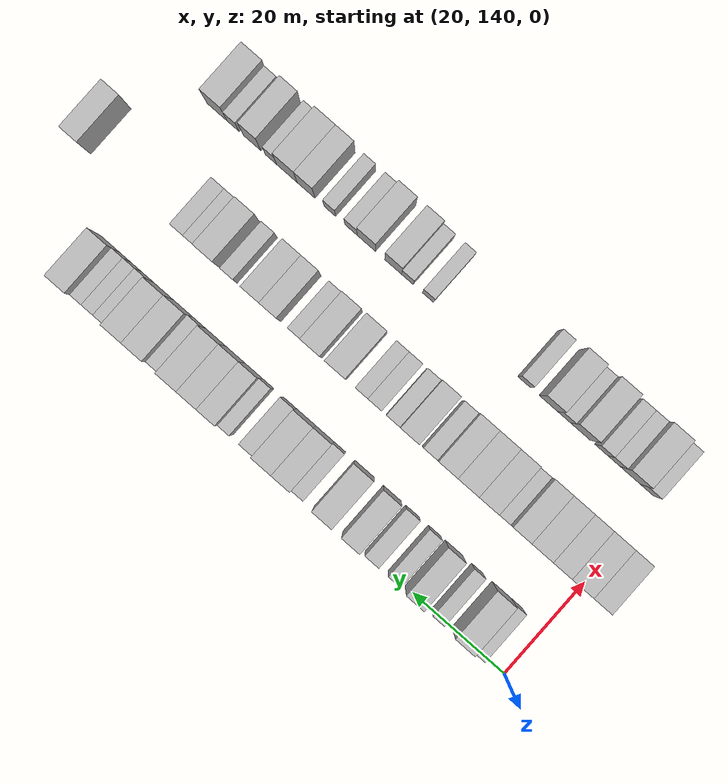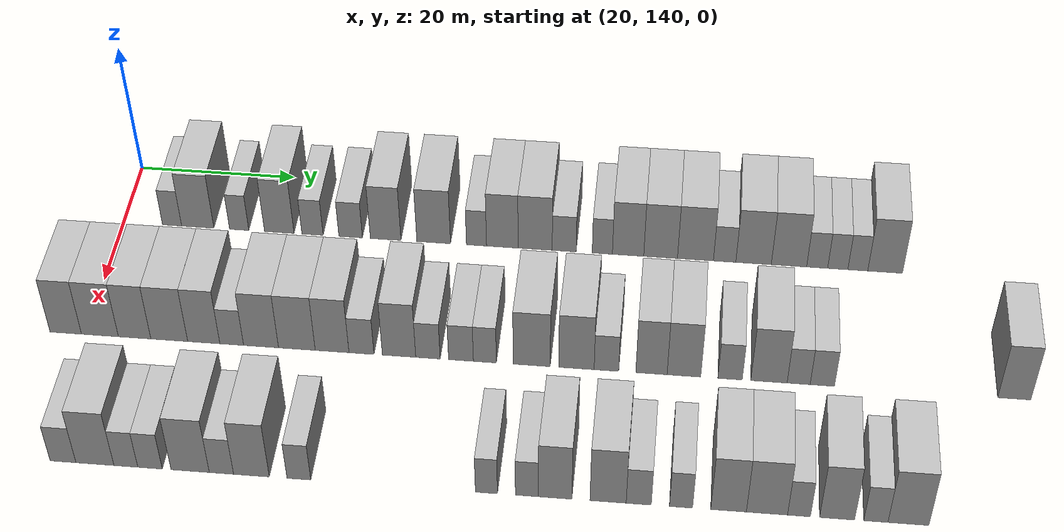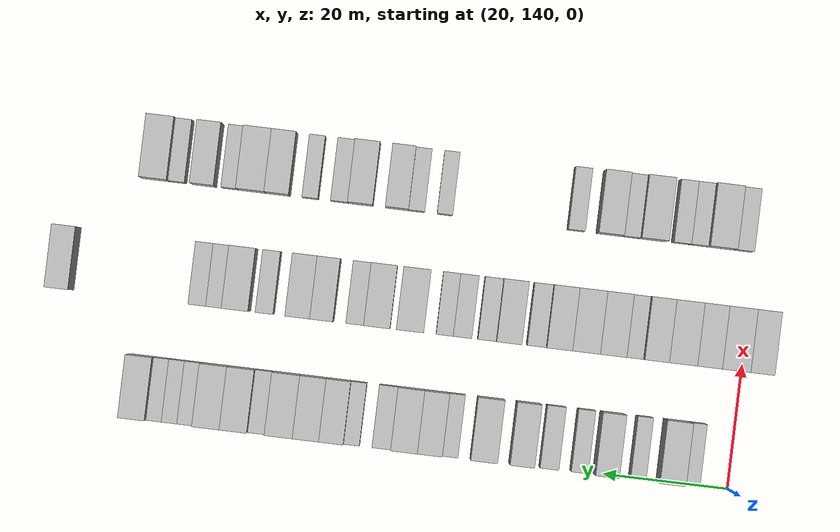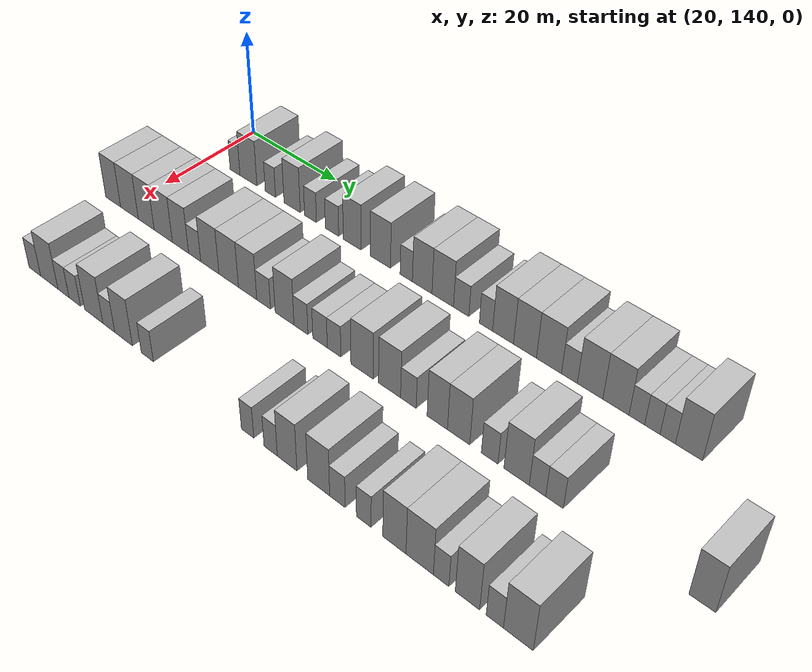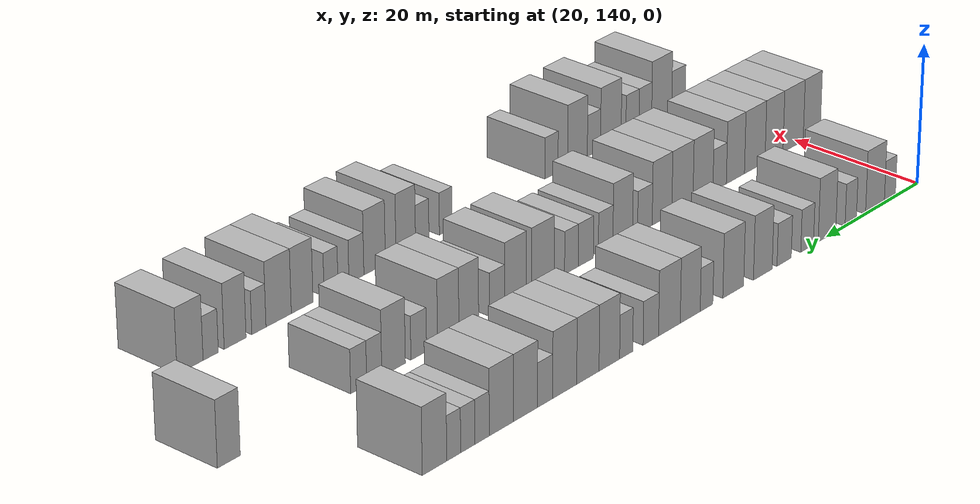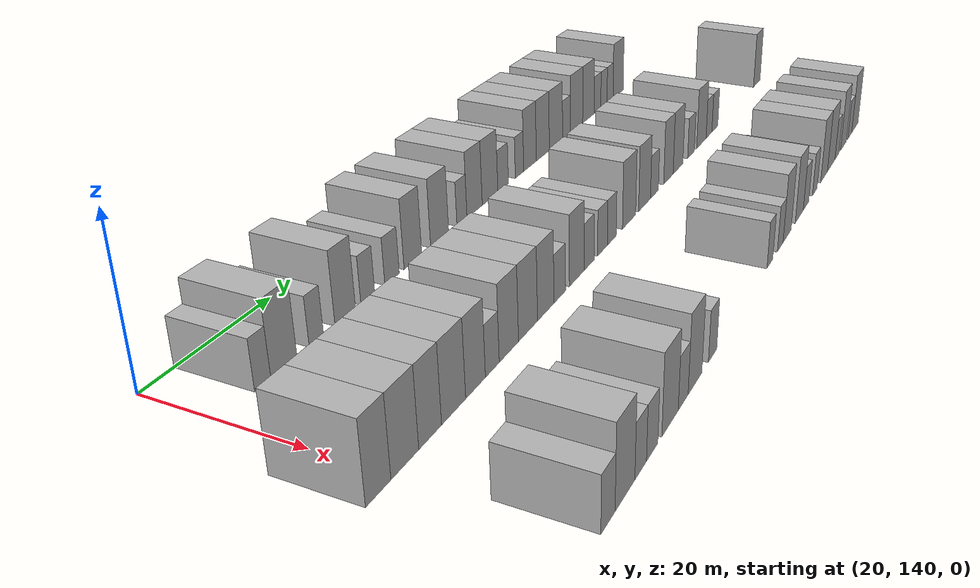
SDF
<sdf version="1.6">
 <world name="default">
  <model name="building_90">
   <static>1</static>
   <pose>25.0000 146.1806 0 0.000000 0.000000 0.000000</pose>
   <link name="link">
    <pose>0 0 3.00 0 0 0</pose>
    <collision name="collision"><geometry><box><size>10.0000 2.4386 6.0000</size></box></geometry></collision>
    <visual name="visual">
     <cast_shadows>0</cast_shadows>
     <geometry><box><size>10.0000 2.4386 6.0000</size></box></geometry>
     <material>
      <script>
       <uri>model://HANNAS_wall/materials/scripts</uri>
       <uri>model://HANNAS_wall/materials/textures</uri>
       <name>vrc/HANNAS_wall</name>
      </script>
     </material>
    </visual>
   </link>
  </model>
  <model name="building_91">
   <static>1</static>
   <pose>25.0000 149.4618 0 0.000000 0.000000 0.000000</pose>
   <link name="link">
    <pose>0 0 4.50 0 0 0</pose>
    <collision name="collision"><geometry><box><size>10.0000 4.1237 9.0000</size></box></geometry></collision>
    <visual name="visual">
     <cast_shadows>0</cast_shadows>
     <geometry><box><size>10.0000 4.1237 9.0000</size></box></geometry>
     <material>
      <script>
       <uri>model://HANNAS_wall/materials/scripts</uri>
       <uri>model://HANNAS_wall/materials/textures</uri>
       <name>vrc/HANNAS_wall</name>
      </script>
     </material>
    </visual>
   </link>
  </model>
  <model name="building_92">
   <static>1</static>
   <pose>25.0000 154.7460 0 0.000000 0.000000 0.000000</pose>
   <link name="link">
    <pose>0 0 3.00 0 0 0</pose>
    <collision name="collision"><geometry><box><size>10.0000 2.4448 6.0000</size></box></geometry></collision>
    <visual name="visual">
     <cast_shadows>0</cast_shadows>
     <geometry><box><size>10.0000 2.4448 6.0000</size></box></geometry>
     <material>
      <script>
       <uri>model://HANNAS_wall/materials/scripts</uri>
       <uri>model://HANNAS_wall/materials/textures</uri>
       <name>vrc/HANNAS_wall</name>
      </script>
     </material>
    </visual>
   </link>
  </model>
  <model name="building_93">
   <static>1</static>
   <pose>25.0000 159.8432 0 0.000000 0.000000 0.000000</pose>
   <link name="link">
    <pose>0 0 4.50 0 0 0</pose>
    <collision name="collision"><geometry><box><size>10.0000 3.7496 9.0000</size></box></geometry></collision>
    <visual name="visual">
     <cast_shadows>0</cast_shadows>
     <geometry><box><size>10.0000 3.7496 9.0000</size></box></geometry>
     <material>
      <script>
       <uri>model://HANNAS_wall/materials/scripts</uri>
       <uri>model://HANNAS_wall/materials/textures</uri>
       <name>vrc/HANNAS_wall</name>
      </script>
     </material>
    </visual>
   </link>
  </model>
  <model name="building_94">
   <static>1</static>
   <pose>25.0000 164.0615 0 0.000000 0.000000 0.000000</pose>
   <link name="link">
    <pose>0 0 3.00 0 0 0</pose>
    <collision name="collision"><geometry><box><size>10.0000 2.6869 6.0000</size></box></geometry></collision>
    <visual name="visual">
     <cast_shadows>0</cast_shadows>
     <geometry><box><size>10.0000 2.6869 6.0000</size></box></geometry>
     <material>
      <script>
       <uri>model://HANNAS_wall/materials/scripts</uri>
       <uri>model://HANNAS_wall/materials/textures</uri>
       <name>vrc/HANNAS_wall</name>
      </script>
     </material>
    </visual>
   </link>
  </model>
  <model name="building_95">
   <static>1</static>
   <pose>25.0000 168.8901 0 0.000000 0.000000 0.000000</pose>
   <link name="link">
    <pose>0 0 3.00 0 0 0</pose>
    <collision name="collision"><geometry><box><size>10.0000 2.9703 6.0000</size></box></geometry></collision>
    <visual name="visual">
     <cast_shadows>0</cast_shadows>
     <geometry><box><size>10.0000 2.9703 6.0000</size></box></geometry>
     <material>
      <script>
       <uri>model://HANNAS_wall/materials/scripts</uri>
       <uri>model://HANNAS_wall/materials/textures</uri>
       <name>vrc/HANNAS_wall</name>
      </script>
     </material>
    </visual>
   </link>
  </model>
  <model name="building_96">
   <static>1</static>
   <pose>25.0000 173.3067 0 0.000000 0.000000 0.000000</pose>
   <link name="link">
    <pose>0 0 4.50 0 0 0</pose>
    <collision name="collision"><geometry><box><size>10.0000 3.8629 9.0000</size></box></geometry></collision>
    <visual name="visual">
     <cast_shadows>0</cast_shadows>
     <geometry><box><size>10.0000 3.8629 9.0000</size></box></geometry>
     <material>
      <script>
       <uri>model://HANNAS_wall/materials/scripts</uri>
       <uri>model://HANNAS_wall/materials/textures</uri>
       <name>vrc/HANNAS_wall</name>
      </script>
     </material>
    </visual>
   </link>
  </model>
  <model name="building_97">
   <static>1</static>
   <pose>25.0000 179.3547 0 0.000000 0.000000 0.000000</pose>
   <link name="link">
    <pose>0 0 4.50 0 0 0</pose>
    <collision name="collision"><geometry><box><size>10.0000 4.2333 9.0000</size></box></geometry></collision>
    <visual name="visual">
     <cast_shadows>0</cast_shadows>
     <geometry><box><size>10.0000 4.2333 9.0000</size></box></geometry>
     <material>
      <script>
       <uri>model://HANNAS_wall/materials/scripts</uri>
       <uri>model://HANNAS_wall/materials/textures</uri>
       <name>vrc/HANNAS_wall</name>
      </script>
     </material>
    </visual>
   </link>
  </model>
  <model name="building_98">
   <static>1</static>
   <pose>25.0000 184.7286 0 0.000000 0.000000 0.000000</pose>
   <link name="link">
    <pose>0 0 3.00 0 0 0</pose>
    <collision name="collision"><geometry><box><size>10.0000 2.5144 6.0000</size></box></geometry></collision>
    <visual name="visual">
     <cast_shadows>0</cast_shadows>
     <geometry><box><size>10.0000 2.5144 6.0000</size></box></geometry>
     <material>
      <script>
       <uri>model://HANNAS_wall/materials/scripts</uri>
       <uri>model://HANNAS_wall/materials/textures</uri>
       <name>vrc/HANNAS_wall</name>
      </script>
     </material>
    </visual>
   </link>
  </model>
  <model name="building_99">
   <static>1</static>
   <pose>25.0000 187.9658 0 0.000000 0.000000 0.000000</pose>
   <link name="link">
    <pose>0 0 4.50 0 0 0</pose>
    <collision name="collision"><geometry><box><size>10.0000 3.9601 9.0000</size></box></geometry></collision>
    <visual name="visual">
     <cast_shadows>0</cast_shadows>
     <geometry><box><size>10.0000 3.9601 9.0000</size></box></geometry>
     <material>
      <script>
       <uri>model://HANNAS_wall/materials/scripts</uri>
       <uri>model://HANNAS_wall/materials/textures</uri>
       <name>vrc/HANNAS_wall</name>
      </script>
     </material>
    </visual>
   </link>
  </model>
  <model name="building_100">
   <static>1</static>
   <pose>25.0000 192.0686 0 0.000000 0.000000 0.000000</pose>
   <link name="link">
    <pose>0 0 4.50 0 0 0</pose>
    <collision name="collision"><geometry><box><size>10.0000 4.2455 9.0000</size></box></geometry></collision>
    <visual name="visual">
     <cast_shadows>0</cast_shadows>
     <geometry><box><size>10.0000 4.2455 9.0000</size></box></geometry>
     <material>
      <script>
       <uri>model://HANNAS_wall/materials/scripts</uri>
       <uri>model://HANNAS_wall/materials/textures</uri>
       <name>vrc/HANNAS_wall</name>
      </script>
     </material>
    </visual>
   </link>
  </model>
  <model name="building_101">
   <static>1</static>
   <pose>25.0000 195.6836 0 0.000000 0.000000 0.000000</pose>
   <link name="link">
    <pose>0 0 3.00 0 0 0</pose>
    <collision name="collision"><geometry><box><size>10.0000 2.9845 6.0000</size></box></geometry></collision>
    <visual name="visual">
     <cast_shadows>0</cast_shadows>
     <geometry><box><size>10.0000 2.9845 6.0000</size></box></geometry>
     <material>
      <script>
       <uri>model://HANNAS_wall/materials/scripts</uri>
       <uri>model://HANNAS_wall/materials/textures</uri>
       <name>vrc/HANNAS_wall</name>
      </script>
     </material>
    </visual>
   </link>
  </model>
  <model name="building_102">
   <static>1</static>
   <pose>25.0000 200.4294 0 0.000000 0.000000 0.000000</pose>
   <link name="link">
    <pose>0 0 3.00 0 0 0</pose>
    <collision name="collision"><geometry><box><size>10.0000 2.5070 6.0000</size></box></geometry></collision>
    <visual name="visual">
     <cast_shadows>0</cast_shadows>
     <geometry><box><size>10.0000 2.5070 6.0000</size></box></geometry>
     <material>
      <script>
       <uri>model://HANNAS_wall/materials/scripts</uri>
       <uri>model://HANNAS_wall/materials/textures</uri>
       <name>vrc/HANNAS_wall</name>
      </script>
     </material>
    </visual>
   </link>
  </model>
  <model name="building_103">
   <static>1</static>
   <pose>25.0000 203.6291 0 0.000000 0.000000 0.000000</pose>
   <link name="link">
    <pose>0 0 4.50 0 0 0</pose>
    <collision name="collision"><geometry><box><size>10.0000 3.8925 9.0000</size></box></geometry></collision>
    <visual name="visual">
     <cast_shadows>0</cast_shadows>
     <geometry><box><size>10.0000 3.8925 9.0000</size></box></geometry>
     <material>
      <script>
       <uri>model://HANNAS_wall/materials/scripts</uri>
       <uri>model://HANNAS_wall/materials/textures</uri>
       <name>vrc/HANNAS_wall</name>
      </script>
     </material>
    </visual>
   </link>
  </model>
  <model name="building_104">
   <static>1</static>
   <pose>25.0000 207.6634 0 0.000000 0.000000 0.000000</pose>
   <link name="link">
    <pose>0 0 4.50 0 0 0</pose>
    <collision name="collision"><geometry><box><size>10.0000 4.1762 9.0000</size></box></geometry></collision>
    <visual name="visual">
     <cast_shadows>0</cast_shadows>
     <geometry><box><size>10.0000 4.1762 9.0000</size></box></geometry>
     <material>
      <script>
       <uri>model://HANNAS_wall/materials/scripts</uri>
       <uri>model://HANNAS_wall/materials/textures</uri>
       <name>vrc/HANNAS_wall</name>
      </script>
     </material>
    </visual>
   </link>
  </model>
  <model name="building_105">
   <static>1</static>
   <pose>25.0000 211.9702 0 0.000000 0.000000 0.000000</pose>
   <link name="link">
    <pose>0 0 4.50 0 0 0</pose>
    <collision name="collision"><geometry><box><size>10.0000 4.4373 9.0000</size></box></geometry></collision>
    <visual name="visual">
     <cast_shadows>0</cast_shadows>
     <geometry><box><size>10.0000 4.4373 9.0000</size></box></geometry>
     <material>
      <script>
       <uri>model://HANNAS_wall/materials/scripts</uri>
       <uri>model://HANNAS_wall/materials/textures</uri>
       <name>vrc/HANNAS_wall</name>
      </script>
     </material>
    </visual>
   </link>
  </model>
  <model name="building_106">
   <static>1</static>
   <pose>25.0000 215.5720 0 0.000000 0.000000 0.000000</pose>
   <link name="link">
    <pose>0 0 3.00 0 0 0</pose>
    <collision name="collision"><geometry><box><size>10.0000 2.7662 6.0000</size></box></geometry></collision>
    <visual name="visual">
     <cast_shadows>0</cast_shadows>
     <geometry><box><size>10.0000 2.7662 6.0000</size></box></geometry>
     <material>
      <script>
       <uri>model://HANNAS_wall/materials/scripts</uri>
       <uri>model://HANNAS_wall/materials/textures</uri>
       <name>vrc/HANNAS_wall</name>
      </script>
     </material>
    </visual>
   </link>
  </model>
  <model name="building_107">
   <static>1</static>
   <pose>25.0000 219.1372 0 0.000000 0.000000 0.000000</pose>
   <link name="link">
    <pose>0 0 4.50 0 0 0</pose>
    <collision name="collision"><geometry><box><size>10.0000 4.3643 9.0000</size></box></geometry></collision>
    <visual name="visual">
     <cast_shadows>0</cast_shadows>
     <geometry><box><size>10.0000 4.3643 9.0000</size></box></geometry>
     <material>
      <script>
       <uri>model://HANNAS_wall/materials/scripts</uri>
       <uri>model://HANNAS_wall/materials/textures</uri>
       <name>vrc/HANNAS_wall</name>
      </script>
     </material>
    </visual>
   </link>
  </model>
  <model name="building_108">
   <static>1</static>
   <pose>25.0000 223.4905 0 0.000000 0.000000 0.000000</pose>
   <link name="link">
    <pose>0 0 4.50 0 0 0</pose>
    <collision name="collision"><geometry><box><size>10.0000 4.3422 9.0000</size></box></geometry></collision>
    <visual name="visual">
     <cast_shadows>0</cast_shadows>
     <geometry><box><size>10.0000 4.3422 9.0000</size></box></geometry>
     <material>
      <script>
       <uri>model://HANNAS_wall/materials/scripts</uri>
       <uri>model://HANNAS_wall/materials/textures</uri>
       <name>vrc/HANNAS_wall</name>
      </script>
     </material>
    </visual>
   </link>
  </model>
  <model name="building_109">
   <static>1</static>
   <pose>25.0000 226.9497 0 0.000000 0.000000 0.000000</pose>
   <link name="link">
    <pose>0 0 3.00 0 0 0</pose>
    <collision name="collision"><geometry><box><size>10.0000 2.5762 6.0000</size></box></geometry></collision>
    <visual name="visual">
     <cast_shadows>0</cast_shadows>
     <geometry><box><size>10.0000 2.5762 6.0000</size></box></geometry>
     <material>
      <script>
       <uri>model://HANNAS_wall/materials/scripts</uri>
       <uri>model://HANNAS_wall/materials/textures</uri>
       <name>vrc/HANNAS_wall</name>
      </script>
     </material>
    </visual>
   </link>
  </model>
  <model name="building_110">
   <static>1</static>
   <pose>25.0000 229.4760 0 0.000000 0.000000 0.000000</pose>
   <link name="link">
    <pose>0 0 3.00 0 0 0</pose>
    <collision name="collision"><geometry><box><size>10.0000 2.4764 6.0000</size></box></geometry></collision>
    <visual name="visual">
     <cast_shadows>0</cast_shadows>
     <geometry><box><size>10.0000 2.4764 6.0000</size></box></geometry>
     <material>
      <script>
       <uri>model://HANNAS_wall/materials/scripts</uri>
       <uri>model://HANNAS_wall/materials/textures</uri>
       <name>vrc/HANNAS_wall</name>
      </script>
     </material>
    </visual>
   </link>
  </model>
  <model name="building_111">
   <static>1</static>
   <pose>25.0000 231.9313 0 0.000000 0.000000 0.000000</pose>
   <link name="link">
    <pose>0 0 3.00 0 0 0</pose>
    <collision name="collision"><geometry><box><size>10.0000 2.4343 6.0000</size></box></geometry></collision>
    <visual name="visual">
     <cast_shadows>0</cast_shadows>
     <geometry><box><size>10.0000 2.4343 6.0000</size></box></geometry>
     <material>
      <script>
       <uri>model://HANNAS_wall/materials/scripts</uri>
       <uri>model://HANNAS_wall/materials/textures</uri>
       <name>vrc/HANNAS_wall</name>
      </script>
     </material>
    </visual>
   </link>
  </model>
  <model name="building_112">
   <static>1</static>
   <pose>25.0000 235.2705 0 0.000000 0.000000 0.000000</pose>
   <link name="link">
    <pose>0 0 4.50 0 0 0</pose>
    <collision name="collision"><geometry><box><size>10.0000 4.2439 9.0000</size></box></geometry></collision>
    <visual name="visual">
     <cast_shadows>0</cast_shadows>
     <geometry><box><size>10.0000 4.2439 9.0000</size></box></geometry>
     <material>
      <script>
       <uri>model://HANNAS_wall/materials/scripts</uri>
       <uri>model://HANNAS_wall/materials/textures</uri>
       <name>vrc/HANNAS_wall</name>
      </script>
     </material>
    </visual>
   </link>
  </model>
  <model name="building_202">
   <static>1</static>
   <pose>44.0000 137.5778 0 0.000000 0.000000 0.000000</pose>
   <link name="link">
    <pose>0 0 4.50 0 0 0</pose>
    <collision name="collision"><geometry><box><size>10.0000 3.8270 9.0000</size></box></geometry></collision>
    <visual name="visual">
     <cast_shadows>0</cast_shadows>
     <geometry><box><size>10.0000 3.8270 9.0000</size></box></geometry>
     <material>
      <script>
       <uri>model://HANNAS_wall/materials/scripts</uri>
       <uri>model://HANNAS_wall/materials/textures</uri>
       <name>vrc/HANNAS_wall</name>
      </script>
     </material>
    </visual>
   </link>
  </model>
  <model name="building_203">
   <static>1</static>
   <pose>44.0000 141.7317 0 0.000000 0.000000 0.000000</pose>
   <link name="link">
    <pose>0 0 4.50 0 0 0</pose>
    <collision name="collision"><geometry><box><size>10.0000 4.4809 9.0000</size></box></geometry></collision>
    <visual name="visual">
     <cast_shadows>0</cast_shadows>
     <geometry><box><size>10.0000 4.4809 9.0000</size></box></geometry>
     <material>
      <script>
       <uri>model://HANNAS_wall/materials/scripts</uri>
       <uri>model://HANNAS_wall/materials/textures</uri>
       <name>vrc/HANNAS_wall</name>
      </script>
     </material>
    </visual>
   </link>
  </model>
  <model name="building_204">
   <static>1</static>
   <pose>44.0000 145.9377 0 0.000000 0.000000 0.000000</pose>
   <link name="link">
    <pose>0 0 4.50 0 0 0</pose>
    <collision name="collision"><geometry><box><size>10.0000 3.9311 9.0000</size></box></geometry></collision>
    <visual name="visual">
     <cast_shadows>0</cast_shadows>
     <geometry><box><size>10.0000 3.9311 9.0000</size></box></geometry>
     <material>
      <script>
       <uri>model://HANNAS_wall/materials/scripts</uri>
       <uri>model://HANNAS_wall/materials/textures</uri>
       <name>vrc/HANNAS_wall</name>
      </script>
     </material>
    </visual>
   </link>
  </model>
  <model name="building_205">
   <static>1</static>
   <pose>44.0000 150.1279 0 0.000000 0.000000 0.000000</pose>
   <link name="link">
    <pose>0 0 4.50 0 0 0</pose>
    <collision name="collision"><geometry><box><size>10.0000 4.4493 9.0000</size></box></geometry></collision>
    <visual name="visual">
     <cast_shadows>0</cast_shadows>
     <geometry><box><size>10.0000 4.4493 9.0000</size></box></geometry>
     <material>
      <script>
       <uri>model://HANNAS_wall/materials/scripts</uri>
       <uri>model://HANNAS_wall/materials/textures</uri>
       <name>vrc/HANNAS_wall</name>
      </script>
     </material>
    </visual>
   </link>
  </model>
  <model name="building_206">
   <static>1</static>
   <pose>44.0000 154.2932 0 0.000000 0.000000 0.000000</pose>
   <link name="link">
    <pose>0 0 4.50 0 0 0</pose>
    <collision name="collision"><geometry><box><size>10.0000 3.8811 9.0000</size></box></geometry></collision>
    <visual name="visual">
     <cast_shadows>0</cast_shadows>
     <geometry><box><size>10.0000 3.8811 9.0000</size></box></geometry>
     <material>
      <script>
       <uri>model://HANNAS_wall/materials/scripts</uri>
       <uri>model://HANNAS_wall/materials/textures</uri>
       <name>vrc/HANNAS_wall</name>
      </script>
     </material>
    </visual>
   </link>
  </model>
  <model name="building_207">
   <static>1</static>
   <pose>44.0000 157.6631 0 0.000000 0.000000 0.000000</pose>
   <link name="link">
    <pose>0 0 3.00 0 0 0</pose>
    <collision name="collision"><geometry><box><size>10.0000 2.8587 6.0000</size></box></geometry></collision>
    <visual name="visual">
     <cast_shadows>0</cast_shadows>
     <geometry><box><size>10.0000 2.8587 6.0000</size></box></geometry>
     <material>
      <script>
       <uri>model://HANNAS_wall/materials/scripts</uri>
       <uri>model://HANNAS_wall/materials/textures</uri>
       <name>vrc/HANNAS_wall</name>
      </script>
     </material>
    </visual>
   </link>
  </model>
  <model name="building_208">
   <static>1</static>
   <pose>44.0000 161.1886 0 0.000000 0.000000 0.000000</pose>
   <link name="link">
    <pose>0 0 4.50 0 0 0</pose>
    <collision name="collision"><geometry><box><size>10.0000 4.1923 9.0000</size></box></geometry></collision>
    <visual name="visual">
     <cast_shadows>0</cast_shadows>
     <geometry><box><size>10.0000 4.1923 9.0000</size></box></geometry>
     <material>
      <script>
       <uri>model://HANNAS_wall/materials/scripts</uri>
       <uri>model://HANNAS_wall/materials/textures</uri>
       <name>vrc/HANNAS_wall</name>
      </script>
     </material>
    </visual>
   </link>
  </model>
  <model name="building_209">
   <static>1</static>
   <pose>44.0000 165.4844 0 0.000000 0.000000 0.000000</pose>
   <link name="link">
    <pose>0 0 4.50 0 0 0</pose>
    <collision name="collision"><geometry><box><size>10.0000 4.3994 9.0000</size></box></geometry></collision>
    <visual name="visual">
     <cast_shadows>0</cast_shadows>
     <geometry><box><size>10.0000 4.3994 9.0000</size></box></geometry>
     <material>
      <script>
       <uri>model://HANNAS_wall/materials/scripts</uri>
       <uri>model://HANNAS_wall/materials/textures</uri>
       <name>vrc/HANNAS_wall</name>
      </script>
     </material>
    </visual>
   </link>
  </model>
  <model name="building_210">
   <static>1</static>
   <pose>44.0000 169.7006 0 0.000000 0.000000 0.000000</pose>
   <link name="link">
    <pose>0 0 4.50 0 0 0</pose>
    <collision name="collision"><geometry><box><size>10.0000 4.0331 9.0000</size></box></geometry></collision>
    <visual name="visual">
     <cast_shadows>0</cast_shadows>
     <geometry><box><size>10.0000 4.0331 9.0000</size></box></geometry>
     <material>
      <script>
       <uri>model://HANNAS_wall/materials/scripts</uri>
       <uri>model://HANNAS_wall/materials/textures</uri>
       <name>vrc/HANNAS_wall</name>
      </script>
     </material>
    </visual>
   </link>
  </model>
  <model name="building_211">
   <static>1</static>
   <pose>44.0000 173.2096 0 0.000000 0.000000 0.000000</pose>
   <link name="link">
    <pose>0 0 3.00 0 0 0</pose>
    <collision name="collision"><geometry><box><size>10.0000 2.9848 6.0000</size></box></geometry></collision>
    <visual name="visual">
     <cast_shadows>0</cast_shadows>
     <geometry><box><size>10.0000 2.9848 6.0000</size></box></geometry>
     <material>
      <script>
       <uri>model://HANNAS_wall/materials/scripts</uri>
       <uri>model://HANNAS_wall/materials/textures</uri>
       <name>vrc/HANNAS_wall</name>
      </script>
     </material>
    </visual>
   </link>
  </model>
  <model name="building_212">
   <static>1</static>
   <pose>44.0000 177.6865 0 0.000000 0.000000 0.000000</pose>
   <link name="link">
    <pose>0 0 4.50 0 0 0</pose>
    <collision name="collision"><geometry><box><size>10.0000 3.9689 9.0000</size></box></geometry></collision>
    <visual name="visual">
     <cast_shadows>0</cast_shadows>
     <geometry><box><size>10.0000 3.9689 9.0000</size></box></geometry>
     <material>
      <script>
       <uri>model://HANNAS_wall/materials/scripts</uri>
       <uri>model://HANNAS_wall/materials/textures</uri>
       <name>vrc/HANNAS_wall</name>
      </script>
     </material>
    </visual>
   </link>
  </model>
  <model name="building_213">
   <static>1</static>
   <pose>44.0000 181.1216 0 0.000000 0.000000 0.000000</pose>
   <link name="link">
    <pose>0 0 3.00 0 0 0</pose>
    <collision name="collision"><geometry><box><size>10.0000 2.9013 6.0000</size></box></geometry></collision>
    <visual name="visual">
     <cast_shadows>0</cast_shadows>
     <geometry><box><size>10.0000 2.9013 6.0000</size></box></geometry>
     <material>
      <script>
       <uri>model://HANNAS_wall/materials/scripts</uri>
       <uri>model://HANNAS_wall/materials/textures</uri>
       <name>vrc/HANNAS_wall</name>
      </script>
     </material>
    </visual>
   </link>
  </model>
  <model name="building_214">
   <static>1</static>
   <pose>44.0000 185.0417 0 0.000000 0.000000 0.000000</pose>
   <link name="link">
    <pose>0 0 3.00 0 0 0</pose>
    <collision name="collision"><geometry><box><size>10.0000 2.9390 6.0000</size></box></geometry></collision>
    <visual name="visual">
     <cast_shadows>0</cast_shadows>
     <geometry><box><size>10.0000 2.9390 6.0000</size></box></geometry>
     <material>
      <script>
       <uri>model://HANNAS_wall/materials/scripts</uri>
       <uri>model://HANNAS_wall/materials/textures</uri>
       <name>vrc/HANNAS_wall</name>
      </script>
     </material>
    </visual>
   </link>
  </model>
  <model name="building_215">
   <static>1</static>
   <pose>44.0000 187.8709 0 0.000000 0.000000 0.000000</pose>
   <link name="link">
    <pose>0 0 3.00 0 0 0</pose>
    <collision name="collision"><geometry><box><size>10.0000 2.7193 6.0000</size></box></geometry></collision>
    <visual name="visual">
     <cast_shadows>0</cast_shadows>
     <geometry><box><size>10.0000 2.7193 6.0000</size></box></geometry>
     <material>
      <script>
       <uri>model://HANNAS_wall/materials/scripts</uri>
       <uri>model://HANNAS_wall/materials/textures</uri>
       <name>vrc/HANNAS_wall</name>
      </script>
     </material>
    </visual>
   </link>
  </model>
  <model name="building_216">
   <static>1</static>
   <pose>44.0000 193.4069 0 0.000000 0.000000 0.000000</pose>
   <link name="link">
    <pose>0 0 4.50 0 0 0</pose>
    <collision name="collision"><geometry><box><size>10.0000 4.3528 9.0000</size></box></geometry></collision>
    <visual name="visual">
     <cast_shadows>0</cast_shadows>
     <geometry><box><size>10.0000 4.3528 9.0000</size></box></geometry>
     <material>
      <script>
       <uri>model://HANNAS_wall/materials/scripts</uri>
       <uri>model://HANNAS_wall/materials/textures</uri>
       <name>vrc/HANNAS_wall</name>
      </script>
     </material>
    </visual>
   </link>
  </model>
  <model name="building_217">
   <static>1</static>
   <pose>44.0000 198.6674 0 0.000000 0.000000 0.000000</pose>
   <link name="link">
    <pose>0 0 4.50 0 0 0</pose>
    <collision name="collision"><geometry><box><size>10.0000 4.1682 9.0000</size></box></geometry></collision>
    <visual name="visual">
     <cast_shadows>0</cast_shadows>
     <geometry><box><size>10.0000 4.1682 9.0000</size></box></geometry>
     <material>
      <script>
       <uri>model://HANNAS_wall/materials/scripts</uri>
       <uri>model://HANNAS_wall/materials/textures</uri>
       <name>vrc/HANNAS_wall</name>
      </script>
     </material>
    </visual>
   </link>
  </model>
  <model name="building_218">
   <static>1</static>
   <pose>44.0000 202.1941 0 0.000000 0.000000 0.000000</pose>
   <link name="link">
    <pose>0 0 3.00 0 0 0</pose>
    <collision name="collision"><geometry><box><size>10.0000 2.8851 6.0000</size></box></geometry></collision>
    <visual name="visual">
     <cast_shadows>0</cast_shadows>
     <geometry><box><size>10.0000 2.8851 6.0000</size></box></geometry>
     <material>
      <script>
       <uri>model://HANNAS_wall/materials/scripts</uri>
       <uri>model://HANNAS_wall/materials/textures</uri>
       <name>vrc/HANNAS_wall</name>
      </script>
     </material>
    </visual>
   </link>
  </model>
  <model name="building_219">
   <static>1</static>
   <pose>44.0000 207.4664 0 0.000000 0.000000 0.000000</pose>
   <link name="link">
    <pose>0 0 4.50 0 0 0</pose>
    <collision name="collision"><geometry><box><size>10.0000 3.6595 9.0000</size></box></geometry></collision>
    <visual name="visual">
     <cast_shadows>0</cast_shadows>
     <geometry><box><size>10.0000 3.6595 9.0000</size></box></geometry>
     <material>
      <script>
       <uri>model://HANNAS_wall/materials/scripts</uri>
       <uri>model://HANNAS_wall/materials/textures</uri>
       <name>vrc/HANNAS_wall</name>
      </script>
     </material>
    </visual>
   </link>
  </model>
  <model name="building_220">
   <static>1</static>
   <pose>44.0000 211.2623 0 0.000000 0.000000 0.000000</pose>
   <link name="link">
    <pose>0 0 4.50 0 0 0</pose>
    <collision name="collision"><geometry><box><size>10.0000 3.9323 9.0000</size></box></geometry></collision>
    <visual name="visual">
     <cast_shadows>0</cast_shadows>
     <geometry><box><size>10.0000 3.9323 9.0000</size></box></geometry>
     <material>
      <script>
       <uri>model://HANNAS_wall/materials/scripts</uri>
       <uri>model://HANNAS_wall/materials/textures</uri>
       <name>vrc/HANNAS_wall</name>
      </script>
     </material>
    </visual>
   </link>
  </model>
  <model name="building_221">
   <static>1</static>
   <pose>44.0000 216.6477 0 0.000000 0.000000 0.000000</pose>
   <link name="link">
    <pose>0 0 3.00 0 0 0</pose>
    <collision name="collision"><geometry><box><size>10.0000 2.8385 6.0000</size></box></geometry></collision>
    <visual name="visual">
     <cast_shadows>0</cast_shadows>
     <geometry><box><size>10.0000 2.8385 6.0000</size></box></geometry>
     <material>
      <script>
       <uri>model://HANNAS_wall/materials/scripts</uri>
       <uri>model://HANNAS_wall/materials/textures</uri>
       <name>vrc/HANNAS_wall</name>
      </script>
     </material>
    </visual>
   </link>
  </model>
  <model name="building_222">
   <static>1</static>
   <pose>44.0000 221.1720 0 0.000000 0.000000 0.000000</pose>
   <link name="link">
    <pose>0 0 4.50 0 0 0</pose>
    <collision name="collision"><geometry><box><size>10.0000 4.2102 9.0000</size></box></geometry></collision>
    <visual name="visual">
     <cast_shadows>0</cast_shadows>
     <geometry><box><size>10.0000 4.2102 9.0000</size></box></geometry>
     <material>
      <script>
       <uri>model://HANNAS_wall/materials/scripts</uri>
       <uri>model://HANNAS_wall/materials/textures</uri>
       <name>vrc/HANNAS_wall</name>
      </script>
     </material>
    </visual>
   </link>
  </model>
  <model name="building_223">
   <static>1</static>
   <pose>44.0000 224.6124 0 0.000000 0.000000 0.000000</pose>
   <link name="link">
    <pose>0 0 3.00 0 0 0</pose>
    <collision name="collision"><geometry><box><size>10.0000 2.6706 6.0000</size></box></geometry></collision>
    <visual name="visual">
     <cast_shadows>0</cast_shadows>
     <geometry><box><size>10.0000 2.6706 6.0000</size></box></geometry>
     <material>
      <script>
       <uri>model://HANNAS_wall/materials/scripts</uri>
       <uri>model://HANNAS_wall/materials/textures</uri>
       <name>vrc/HANNAS_wall</name>
      </script>
     </material>
    </visual>
   </link>
  </model>
  <model name="building_224">
   <static>1</static>
   <pose>44.0000 227.3566 0 0.000000 0.000000 0.000000</pose>
   <link name="link">
    <pose>0 0 3.00 0 0 0</pose>
    <collision name="collision"><geometry><box><size>10.0000 2.8177 6.0000</size></box></geometry></collision>
    <visual name="visual">
     <cast_shadows>0</cast_shadows>
     <geometry><box><size>10.0000 2.8177 6.0000</size></box></geometry>
     <material>
      <script>
       <uri>model://HANNAS_wall/materials/scripts</uri>
       <uri>model://HANNAS_wall/materials/textures</uri>
       <name>vrc/HANNAS_wall</name>
      </script>
     </material>
    </visual>
   </link>
  </model>
  <model name="building_225">
   <static>1</static>
   <pose>44.0000 249.4376 0 0.000000 0.000000 0.000000</pose>
   <link name="link">
    <pose>0 0 4.50 0 0 0</pose>
    <collision name="collision"><geometry><box><size>10.0000 3.7814 9.0000</size></box></geometry></collision>
    <visual name="visual">
     <cast_shadows>0</cast_shadows>
     <geometry><box><size>10.0000 3.7814 9.0000</size></box></geometry>
     <material>
      <script>
       <uri>model://HANNAS_wall/materials/scripts</uri>
       <uri>model://HANNAS_wall/materials/textures</uri>
       <name>vrc/HANNAS_wall</name>
      </script>
     </material>
    </visual>
   </link>
  </model>
  <model name="building_317">
   <static>1</static>
   <pose>63.0000 142.3151 0 0.000000 0.000000 0.000000</pose>
   <link name="link">
    <pose>0 0 3.00 0 0 0</pose>
    <collision name="collision"><geometry><box><size>10.0000 2.9535 6.0000</size></box></geometry></collision>
    <visual name="visual">
     <cast_shadows>0</cast_shadows>
     <geometry><box><size>10.0000 2.9535 6.0000</size></box></geometry>
     <material>
      <script>
       <uri>model://HANNAS_wall/materials/scripts</uri>
       <uri>model://HANNAS_wall/materials/textures</uri>
       <name>vrc/HANNAS_wall</name>
      </script>
     </material>
    </visual>
   </link>
  </model>
  <model name="building_318">
   <static>1</static>
   <pose>63.0000 145.9641 0 0.000000 0.000000 0.000000</pose>
   <link name="link">
    <pose>0 0 4.50 0 0 0</pose>
    <collision name="collision"><geometry><box><size>10.0000 4.3446 9.0000</size></box></geometry></collision>
    <visual name="visual">
     <cast_shadows>0</cast_shadows>
     <geometry><box><size>10.0000 4.3446 9.0000</size></box></geometry>
     <material>
      <script>
       <uri>model://HANNAS_wall/materials/scripts</uri>
       <uri>model://HANNAS_wall/materials/textures</uri>
       <name>vrc/HANNAS_wall</name>
      </script>
     </material>
    </visual>
   </link>
  </model>
  <model name="building_319">
   <static>1</static>
   <pose>63.0000 149.4969 0 0.000000 0.000000 0.000000</pose>
   <link name="link">
    <pose>0 0 3.00 0 0 0</pose>
    <collision name="collision"><geometry><box><size>10.0000 2.7210 6.0000</size></box></geometry></collision>
    <visual name="visual">
     <cast_shadows>0</cast_shadows>
     <geometry><box><size>10.0000 2.7210 6.0000</size></box></geometry>
     <material>
      <script>
       <uri>model://HANNAS_wall/materials/scripts</uri>
       <uri>model://HANNAS_wall/materials/textures</uri>
       <name>vrc/HANNAS_wall</name>
      </script>
     </material>
    </visual>
   </link>
  </model>
  <model name="building_320">
   <static>1</static>
   <pose>63.0000 152.2519 0 0.000000 0.000000 0.000000</pose>
   <link name="link">
    <pose>0 0 3.00 0 0 0</pose>
    <collision name="collision"><geometry><box><size>10.0000 2.7889 6.0000</size></box></geometry></collision>
    <visual name="visual">
     <cast_shadows>0</cast_shadows>
     <geometry><box><size>10.0000 2.7889 6.0000</size></box></geometry>
     <material>
      <script>
       <uri>model://HANNAS_wall/materials/scripts</uri>
       <uri>model://HANNAS_wall/materials/textures</uri>
       <name>vrc/HANNAS_wall</name>
      </script>
     </material>
    </visual>
   </link>
  </model>
  <model name="building_321">
   <static>1</static>
   <pose>63.0000 156.8124 0 0.000000 0.000000 0.000000</pose>
   <link name="link">
    <pose>0 0 4.50 0 0 0</pose>
    <collision name="collision"><geometry><box><size>10.0000 4.3320 9.0000</size></box></geometry></collision>
    <visual name="visual">
     <cast_shadows>0</cast_shadows>
     <geometry><box><size>10.0000 4.3320 9.0000</size></box></geometry>
     <material>
      <script>
       <uri>model://HANNAS_wall/materials/scripts</uri>
       <uri>model://HANNAS_wall/materials/textures</uri>
       <name>vrc/HANNAS_wall</name>
      </script>
     </material>
    </visual>
   </link>
  </model>
  <model name="building_322">
   <static>1</static>
   <pose>63.0000 160.3599 0 0.000000 0.000000 0.000000</pose>
   <link name="link">
    <pose>0 0 3.00 0 0 0</pose>
    <collision name="collision"><geometry><box><size>10.0000 2.7631 6.0000</size></box></geometry></collision>
    <visual name="visual">
     <cast_shadows>0</cast_shadows>
     <geometry><box><size>10.0000 2.7631 6.0000</size></box></geometry>
     <material>
      <script>
       <uri>model://HANNAS_wall/materials/scripts</uri>
       <uri>model://HANNAS_wall/materials/textures</uri>
       <name>vrc/HANNAS_wall</name>
      </script>
     </material>
    </visual>
   </link>
  </model>
  <model name="building_323">
   <static>1</static>
   <pose>63.0000 163.7608 0 0.000000 0.000000 0.000000</pose>
   <link name="link">
    <pose>0 0 4.50 0 0 0</pose>
    <collision name="collision"><geometry><box><size>10.0000 4.0387 9.0000</size></box></geometry></collision>
    <visual name="visual">
     <cast_shadows>0</cast_shadows>
     <geometry><box><size>10.0000 4.0387 9.0000</size></box></geometry>
     <material>
      <script>
       <uri>model://HANNAS_wall/materials/scripts</uri>
       <uri>model://HANNAS_wall/materials/textures</uri>
       <name>vrc/HANNAS_wall</name>
      </script>
     </material>
    </visual>
   </link>
  </model>
  <model name="building_324">
   <static>1</static>
   <pose>63.0000 169.1211 0 0.000000 0.000000 0.000000</pose>
   <link name="link">
    <pose>0 0 3.00 0 0 0</pose>
    <collision name="collision"><geometry><box><size>10.0000 2.6819 6.0000</size></box></geometry></collision>
    <visual name="visual">
     <cast_shadows>0</cast_shadows>
     <geometry><box><size>10.0000 2.6819 6.0000</size></box></geometry>
     <material>
      <script>
       <uri>model://HANNAS_wall/materials/scripts</uri>
       <uri>model://HANNAS_wall/materials/textures</uri>
       <name>vrc/HANNAS_wall</name>
      </script>
     </material>
    </visual>
   </link>
  </model>
  <model name="building_325">
   <static>1</static>
   <pose>63.0000 190.1370 0 0.000000 0.000000 0.000000</pose>
   <link name="link">
    <pose>0 0 3.00 0 0 0</pose>
    <collision name="collision"><geometry><box><size>10.0000 2.4500 6.0000</size></box></geometry></collision>
    <visual name="visual">
     <cast_shadows>0</cast_shadows>
     <geometry><box><size>10.0000 2.4500 6.0000</size></box></geometry>
     <material>
      <script>
       <uri>model://HANNAS_wall/materials/scripts</uri>
       <uri>model://HANNAS_wall/materials/textures</uri>
       <name>vrc/HANNAS_wall</name>
      </script>
     </material>
    </visual>
   </link>
  </model>
  <model name="building_326">
   <static>1</static>
   <pose>63.0000 194.6412 0 0.000000 0.000000 0.000000</pose>
   <link name="link">
    <pose>0 0 3.00 0 0 0</pose>
    <collision name="collision"><geometry><box><size>10.0000 2.5584 6.0000</size></box></geometry></collision>
    <visual name="visual">
     <cast_shadows>0</cast_shadows>
     <geometry><box><size>10.0000 2.5584 6.0000</size></box></geometry>
     <material>
      <script>
       <uri>model://HANNAS_wall/materials/scripts</uri>
       <uri>model://HANNAS_wall/materials/textures</uri>
       <name>vrc/HANNAS_wall</name>
      </script>
     </material>
    </visual>
   </link>
  </model>
  <model name="building_327">
   <static>1</static>
   <pose>63.0000 197.7717 0 0.000000 0.000000 0.000000</pose>
   <link name="link">
    <pose>0 0 4.50 0 0 0</pose>
    <collision name="collision"><geometry><box><size>10.0000 3.7025 9.0000</size></box></geometry></collision>
    <visual name="visual">
     <cast_shadows>0</cast_shadows>
     <geometry><box><size>10.0000 3.7025 9.0000</size></box></geometry>
     <material>
      <script>
       <uri>model://HANNAS_wall/materials/scripts</uri>
       <uri>model://HANNAS_wall/materials/textures</uri>
       <name>vrc/HANNAS_wall</name>
      </script>
     </material>
    </visual>
   </link>
  </model>
  <model name="building_328">
   <static>1</static>
   <pose>63.0000 203.6240 0 0.000000 0.000000 0.000000</pose>
   <link name="link">
    <pose>0 0 4.50 0 0 0</pose>
    <collision name="collision"><geometry><box><size>10.0000 4.0023 9.0000</size></box></geometry></collision>
    <visual name="visual">
     <cast_shadows>0</cast_shadows>
     <geometry><box><size>10.0000 4.0023 9.0000</size></box></geometry>
     <material>
      <script>
       <uri>model://HANNAS_wall/materials/scripts</uri>
       <uri>model://HANNAS_wall/materials/textures</uri>
       <name>vrc/HANNAS_wall</name>
      </script>
     </material>
    </visual>
   </link>
  </model>
  <model name="building_329">
   <static>1</static>
   <pose>63.0000 207.0069 0 0.000000 0.000000 0.000000</pose>
   <link name="link">
    <pose>0 0 3.00 0 0 0</pose>
    <collision name="collision"><geometry><box><size>10.0000 2.7633 6.0000</size></box></geometry></collision>
    <visual name="visual">
     <cast_shadows>0</cast_shadows>
     <geometry><box><size>10.0000 2.7633 6.0000</size></box></geometry>
     <material>
      <script>
       <uri>model://HANNAS_wall/materials/scripts</uri>
       <uri>model://HANNAS_wall/materials/textures</uri>
       <name>vrc/HANNAS_wall</name>
      </script>
     </material>
    </visual>
   </link>
  </model>
  <model name="building_330">
   <static>1</static>
   <pose>63.0000 211.6597 0 0.000000 0.000000 0.000000</pose>
   <link name="link">
    <pose>0 0 3.00 0 0 0</pose>
    <collision name="collision"><geometry><box><size>10.0000 2.5424 6.0000</size></box></geometry></collision>
    <visual name="visual">
     <cast_shadows>0</cast_shadows>
     <geometry><box><size>10.0000 2.5424 6.0000</size></box></geometry>
     <material>
      <script>
       <uri>model://HANNAS_wall/materials/scripts</uri>
       <uri>model://HANNAS_wall/materials/textures</uri>
       <name>vrc/HANNAS_wall</name>
      </script>
     </material>
    </visual>
   </link>
  </model>
  <model name="building_331">
   <static>1</static>
   <pose>63.0000 216.8842 0 0.000000 0.000000 0.000000</pose>
   <link name="link">
    <pose>0 0 4.50 0 0 0</pose>
    <collision name="collision"><geometry><box><size>10.0000 3.9064 9.0000</size></box></geometry></collision>
    <visual name="visual">
     <cast_shadows>0</cast_shadows>
     <geometry><box><size>10.0000 3.9064 9.0000</size></box></geometry>
     <material>
      <script>
       <uri>model://HANNAS_wall/materials/scripts</uri>
       <uri>model://HANNAS_wall/materials/textures</uri>
       <name>vrc/HANNAS_wall</name>
      </script>
     </material>
    </visual>
   </link>
  </model>
  <model name="building_332">
   <static>1</static>
   <pose>63.0000 221.0870 0 0.000000 0.000000 0.000000</pose>
   <link name="link">
    <pose>0 0 4.50 0 0 0</pose>
    <collision name="collision"><geometry><box><size>10.0000 4.4993 9.0000</size></box></geometry></collision>
    <visual name="visual">
     <cast_shadows>0</cast_shadows>
     <geometry><box><size>10.0000 4.4993 9.0000</size></box></geometry>
     <material>
      <script>
       <uri>model://HANNAS_wall/materials/scripts</uri>
       <uri>model://HANNAS_wall/materials/textures</uri>
       <name>vrc/HANNAS_wall</name>
      </script>
     </material>
    </visual>
   </link>
  </model>
  <model name="building_333">
   <static>1</static>
   <pose>63.0000 224.5837 0 0.000000 0.000000 0.000000</pose>
   <link name="link">
    <pose>0 0 3.00 0 0 0</pose>
    <collision name="collision"><geometry><box><size>10.0000 2.4941 6.0000</size></box></geometry></collision>
    <visual name="visual">
     <cast_shadows>0</cast_shadows>
     <geometry><box><size>10.0000 2.4941 6.0000</size></box></geometry>
     <material>
      <script>
       <uri>model://HANNAS_wall/materials/scripts</uri>
       <uri>model://HANNAS_wall/materials/textures</uri>
       <name>vrc/HANNAS_wall</name>
      </script>
     </material>
    </visual>
   </link>
  </model>
  <model name="building_334">
   <static>1</static>
   <pose>63.0000 228.7363 0 0.000000 0.000000 0.000000</pose>
   <link name="link">
    <pose>0 0 4.50 0 0 0</pose>
    <collision name="collision"><geometry><box><size>10.0000 3.8110 9.0000</size></box></geometry></collision>
    <visual name="visual">
     <cast_shadows>0</cast_shadows>
     <geometry><box><size>10.0000 3.8110 9.0000</size></box></geometry>
     <material>
      <script>
       <uri>model://HANNAS_wall/materials/scripts</uri>
       <uri>model://HANNAS_wall/materials/textures</uri>
       <name>vrc/HANNAS_wall</name>
      </script>
     </material>
    </visual>
   </link>
  </model>
  <model name="building_335">
   <static>1</static>
   <pose>63.0000 232.9529 0 0.000000 0.000000 0.000000</pose>
   <link name="link">
    <pose>0 0 3.00 0 0 0</pose>
    <collision name="collision"><geometry><box><size>10.0000 2.6223 6.0000</size></box></geometry></collision>
    <visual name="visual">
     <cast_shadows>0</cast_shadows>
     <geometry><box><size>10.0000 2.6223 6.0000</size></box></geometry>
     <material>
      <script>
       <uri>model://HANNAS_wall/materials/scripts</uri>
       <uri>model://HANNAS_wall/materials/textures</uri>
       <name>vrc/HANNAS_wall</name>
      </script>
     </material>
    </visual>
   </link>
  </model>
  <model name="building_336">
   <static>1</static>
   <pose>63.0000 236.4792 0 0.000000 0.000000 0.000000</pose>
   <link name="link">
    <pose>0 0 4.50 0 0 0</pose>
    <collision name="collision"><geometry><box><size>10.0000 4.4303 9.0000</size></box></geometry></collision>
    <visual name="visual">
     <cast_shadows>0</cast_shadows>
     <geometry><box><size>10.0000 4.4303 9.0000</size></box></geometry>
     <material>
      <script>
       <uri>model://HANNAS_wall/materials/scripts</uri>
       <uri>model://HANNAS_wall/materials/textures</uri>
       <name>vrc/HANNAS_wall</name>
      </script>
     </material>
    </visual>
   </link>
  </model>
 </world>
</sdf>
